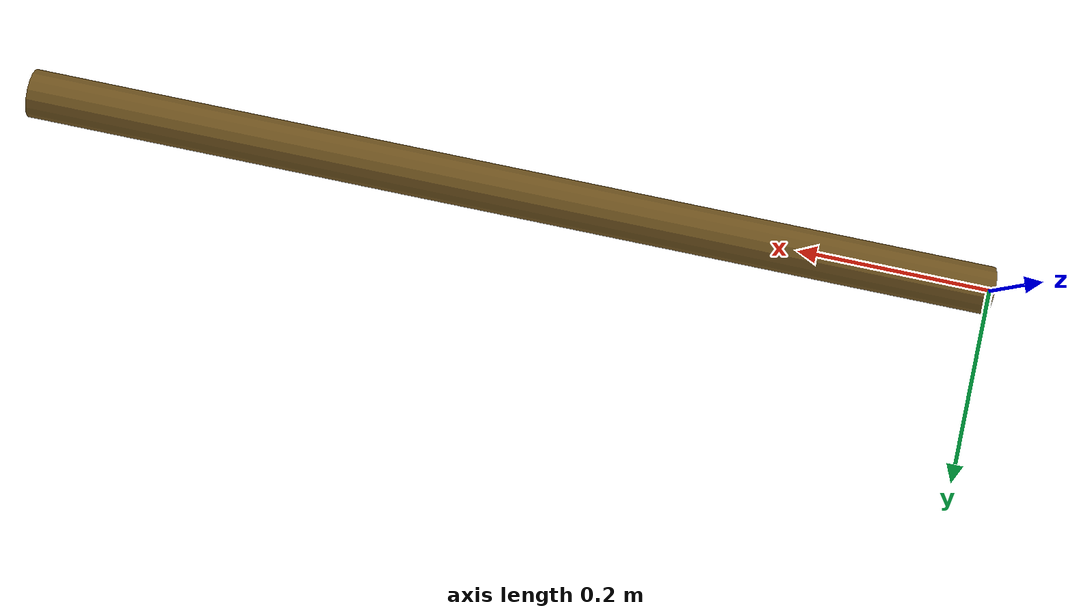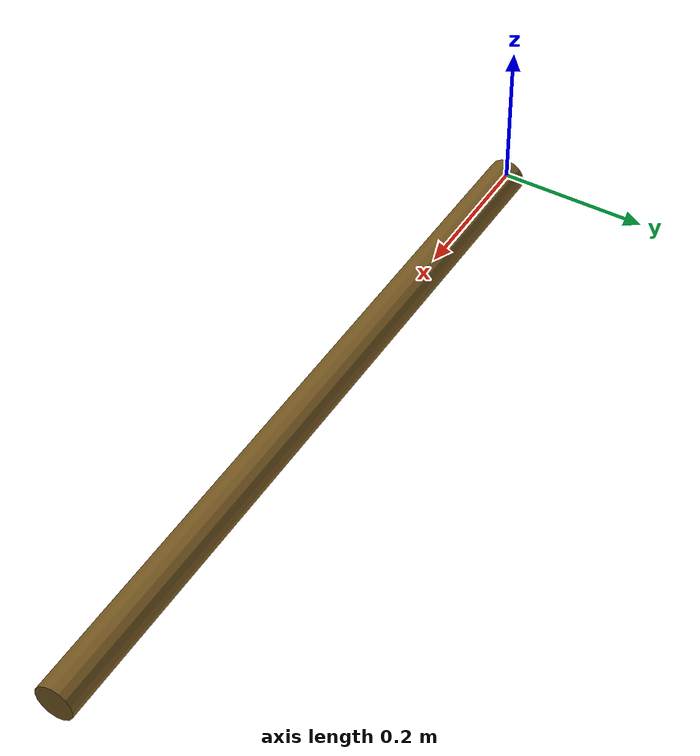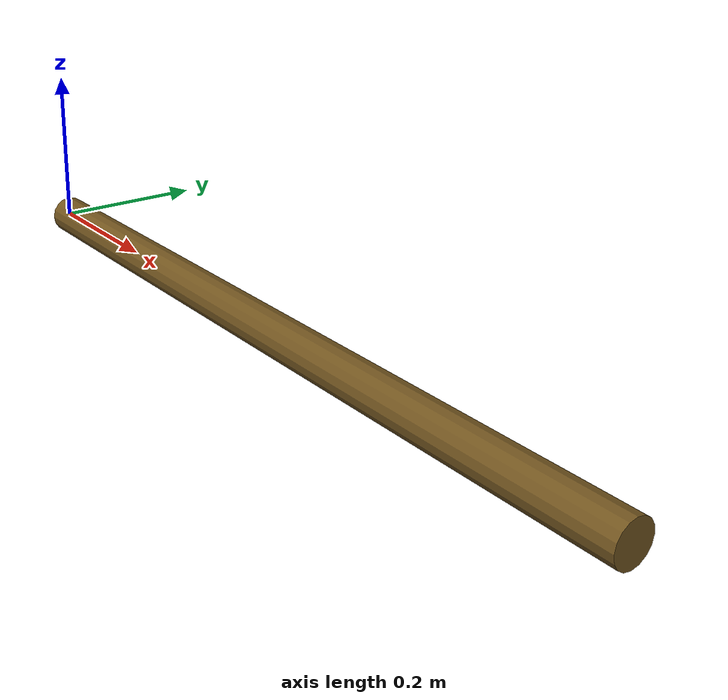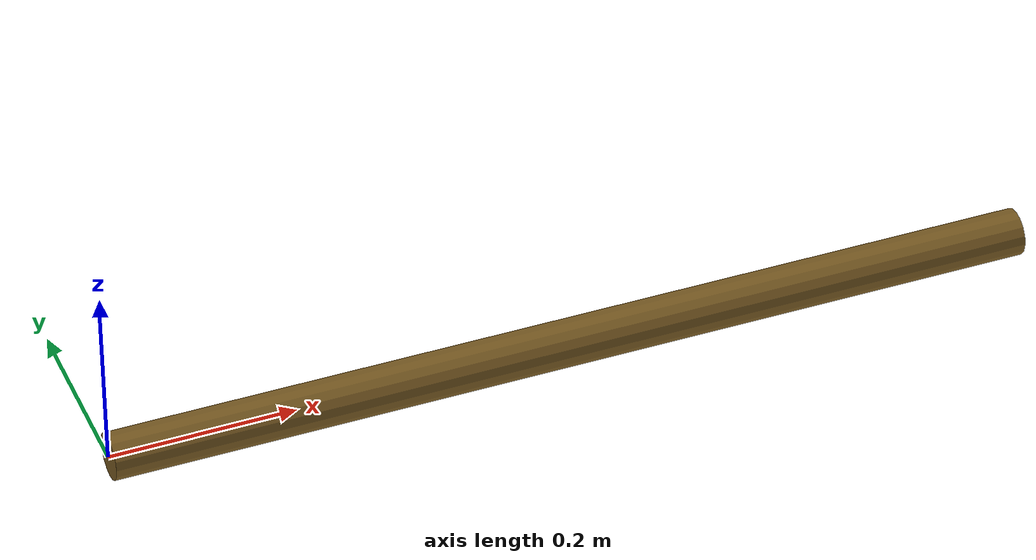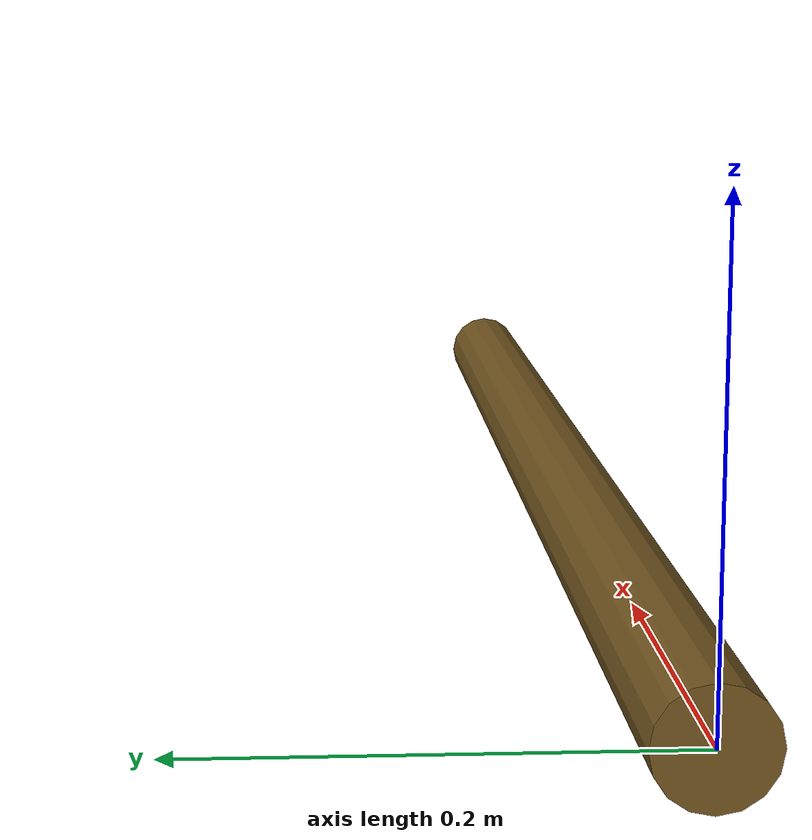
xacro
<?xml version="1.0"?>
<robot name="rod" xmlns:xacro="http://www.ros.org/wiki/xacro">

  <link name="rod_link">
    <visual>
      <geometry>
        <mesh filename="package://qm_description/meshes/sar/Stick.stl" scale="0.001 0.001 0.001"/>
      </geometry>
      <material name="brown">
          <color rgba="0.462 0.345 0.129 1"/>
      </material>
    </visual>
    <collision>
      <geometry>
        <mesh filename="package://qm_description/meshes/sar/Stick.stl" scale="0.001 0.001 0.001"/>
      </geometry>
    </collision>
    <inertial>
      <origin xyz="0.5 0 0" rpy="0 0 0"/>
      <mass value="3.0"/>
      <inertia ixx="0.000375" ixy="0.0" ixz="0.0" iyy="0.25185" iyz="0.0" izz="0.25185"/>
    </inertial>

  </link>

  <gazebo reference="rod_link">
    <material>Gazebo/WoodPallet</material>
  </gazebo>

</robot>
